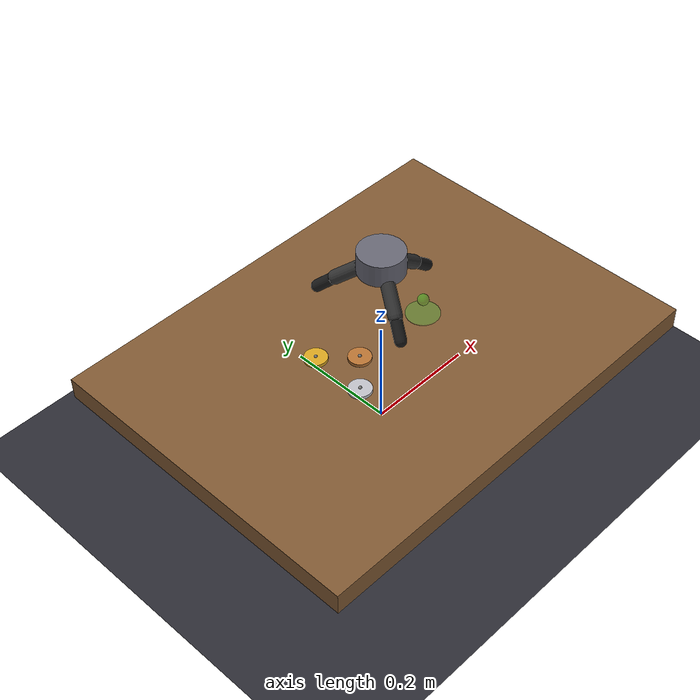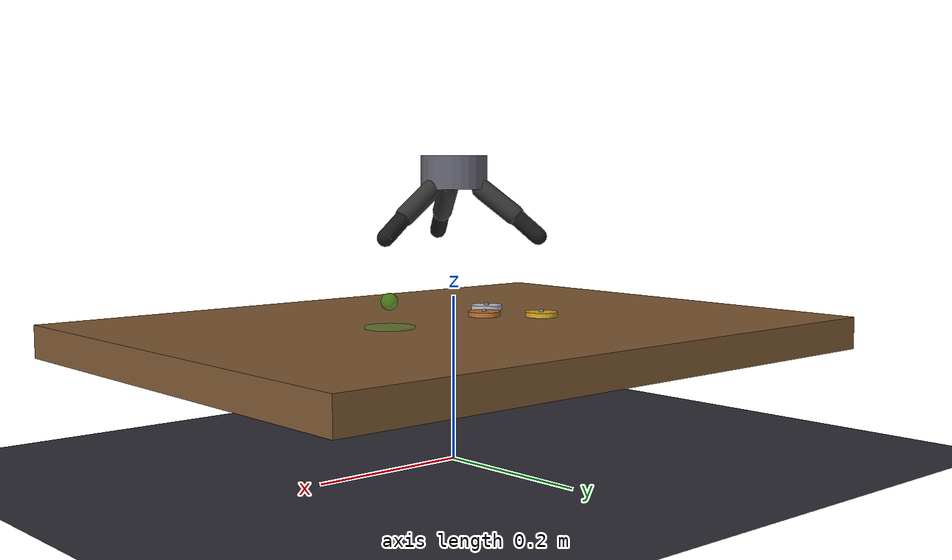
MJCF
<mujoco model="coin_stack">
  <compiler angle="radian" autolimits="true"/>

  <option gravity="0 0 -9.81" timestep="0.002">
    <flag warmstart="enable"/>
  </option>

  <default>
    <joint damping="0.5" armature="0.01"/>
    <geom friction="0.8 0.5 0.5" condim="4" contype="1" conaffinity="1"/>
    <position kp="20" kv="2"/>
  </default>

  <asset>
    <texture type="skybox" builtin="gradient" rgb1="0.4 0.5 0.6" rgb2="0.1 0.1 0.15" width="512" height="512"/>
    <texture name="wood" type="2d" builtin="flat" rgb1="0.5 0.35 0.2" rgb2="0.45 0.3 0.18" width="512" height="512"/>
    <texture name="grid" type="2d" builtin="checker" rgb1="0.15 0.15 0.18" rgb2="0.2 0.2 0.23" width="512" height="512"/>

    <material name="table" texture="wood" texrepeat="4 4"/>
    <material name="floor" texture="grid" texrepeat="10 10"/>
    <material name="gripper_metal" rgba="0.4 0.4 0.45 1"/>
    <material name="finger_rubber" rgba="0.2 0.2 0.2 1"/>
    <material name="finger_tip" rgba="0.1 0.1 0.1 1"/>
    <material name="coin_gold" rgba="0.85 0.65 0.13 1" specular="0.8" shininess="0.9"/>
    <material name="coin_silver" rgba="0.75 0.75 0.78 1" specular="0.8" shininess="0.9"/>
    <material name="coin_copper" rgba="0.72 0.45 0.2 1" specular="0.7" shininess="0.8"/>
    <material name="target_zone" rgba="0.2 0.8 0.2 0.3"/>
  </asset>

  <worldbody>
    <!-- Ground and table -->
    <geom name="floor" type="plane" size="1 1 0.1" material="floor" pos="0 0 0"/>
    <geom name="table" type="box" size="0.4 0.3 0.02" pos="0 0 0.15" material="table"/>

    <!-- Target stacking zone (visual only) -->
    <body name="target_zone" pos="0.1 0 0.171">
      <geom name="target_base" type="cylinder" size="0.03 0.001" material="target_zone" contype="0" conaffinity="0"/>
      <site name="stack_target" pos="0 0 0.03" size="0.01" rgba="0 1 0 0.3"/>
    </body>

    <!-- Coin 1 (Gold) -->
    <body name="coin_1" pos="-0.1 0.05 0.175">
      <freejoint name="coin_1_joint"/>
      <geom name="coin_1_geom" type="cylinder" size="0.02 0.003" material="coin_gold" mass="0.01"/>
      <site name="coin_1_site" pos="0 0 0.003" size="0.003"/>
    </body>

    <!-- Coin 2 (Silver) -->
    <body name="coin_2" pos="-0.1 -0.05 0.175">
      <freejoint name="coin_2_joint"/>
      <geom name="coin_2_geom" type="cylinder" size="0.02 0.003" material="coin_silver" mass="0.01"/>
      <site name="coin_2_site" pos="0 0 0.003" size="0.003"/>
    </body>

    <!-- Coin 3 (Copper) -->
    <body name="coin_3" pos="-0.05 0 0.175">
      <freejoint name="coin_3_joint"/>
      <geom name="coin_3_geom" type="cylinder" size="0.02 0.003" material="coin_copper" mass="0.01"/>
      <site name="coin_3_site" pos="0 0 0.003" size="0.003"/>
    </body>

    <!-- Robotiq-style 3-Finger Gripper -->
    <body name="gripper_base" pos="0 0 0.35">
      <joint name="base_x" type="slide" axis="1 0 0" range="-0.3 0.3" damping="5"/>
      <joint name="base_y" type="slide" axis="0 1 0" range="-0.3 0.3" damping="5"/>
      <joint name="base_z" type="slide" axis="0 0 1" range="0.15 0.5" damping="5"/>
      <joint name="base_roll" type="hinge" axis="1 0 0" range="-3.14 3.14" damping="1"/>
      <joint name="base_pitch" type="hinge" axis="0 1 0" range="-1.57 1.57" damping="1"/>
      <joint name="base_yaw" type="hinge" axis="0 0 1" range="-3.14 3.14" damping="1"/>

      <geom name="palm" type="cylinder" size="0.04 0.02" material="gripper_metal"/>

      <!-- Finger A -->
      <body name="finger_a_proximal" pos="0.035 0 -0.02">
        <joint name="finger_a_base" type="hinge" axis="0 1 0" range="-0.2 1.4"/>
        <geom name="finger_a_prox" type="capsule" fromto="0 0 0 0.04 0 -0.03" size="0.012" material="finger_rubber"/>
        <body name="finger_a_distal" pos="0.04 0 -0.03">
          <joint name="finger_a_tip" type="hinge" axis="0 1 0" range="-0.4 1.2"/>
          <geom name="finger_a_dist" type="capsule" fromto="0 0 0 0.03 0 -0.025" size="0.01" material="finger_tip"/>
          <site name="finger_a_site" pos="0.03 0 -0.025" size="0.005"/>
        </body>
      </body>

      <!-- Finger B -->
      <body name="finger_b_proximal" pos="-0.0175 0.0303 -0.02" euler="0 0 2.094">
        <joint name="finger_b_base" type="hinge" axis="0 1 0" range="-0.2 1.4"/>
        <geom name="finger_b_prox" type="capsule" fromto="0 0 0 0.04 0 -0.03" size="0.012" material="finger_rubber"/>
        <body name="finger_b_distal" pos="0.04 0 -0.03">
          <joint name="finger_b_tip" type="hinge" axis="0 1 0" range="-0.4 1.2"/>
          <geom name="finger_b_dist" type="capsule" fromto="0 0 0 0.03 0 -0.025" size="0.01" material="finger_tip"/>
          <site name="finger_b_site" pos="0.03 0 -0.025" size="0.005"/>
        </body>
      </body>

      <!-- Finger C -->
      <body name="finger_c_proximal" pos="-0.0175 -0.0303 -0.02" euler="0 0 -2.094">
        <joint name="finger_c_base" type="hinge" axis="0 1 0" range="-0.2 1.4"/>
        <geom name="finger_c_prox" type="capsule" fromto="0 0 0 0.04 0 -0.03" size="0.012" material="finger_rubber"/>
        <body name="finger_c_distal" pos="0.04 0 -0.03">
          <joint name="finger_c_tip" type="hinge" axis="0 1 0" range="-0.4 1.2"/>
          <geom name="finger_c_dist" type="capsule" fromto="0 0 0 0.03 0 -0.025" size="0.01" material="finger_tip"/>
          <site name="finger_c_site" pos="0.03 0 -0.025" size="0.005"/>
        </body>
      </body>
    </body>
  </worldbody>

  <actuator>
    <position name="act_base_x" joint="base_x" kp="100" ctrlrange="-0.3 0.3"/>
    <position name="act_base_y" joint="base_y" kp="100" ctrlrange="-0.3 0.3"/>
    <position name="act_base_z" joint="base_z" kp="100" ctrlrange="0.15 0.5"/>
    <position name="act_base_roll" joint="base_roll" kp="50" ctrlrange="-3.14 3.14"/>
    <position name="act_base_pitch" joint="base_pitch" kp="50" ctrlrange="-1.57 1.57"/>
    <position name="act_base_yaw" joint="base_yaw" kp="50" ctrlrange="-3.14 3.14"/>
    <position name="act_finger_a_base" joint="finger_a_base" kp="10" ctrlrange="-0.2 1.4"/>
    <position name="act_finger_a_tip" joint="finger_a_tip" kp="5" ctrlrange="-0.4 1.2"/>
    <position name="act_finger_b_base" joint="finger_b_base" kp="10" ctrlrange="-0.2 1.4"/>
    <position name="act_finger_b_tip" joint="finger_b_tip" kp="5" ctrlrange="-0.4 1.2"/>
    <position name="act_finger_c_base" joint="finger_c_base" kp="10" ctrlrange="-0.2 1.4"/>
    <position name="act_finger_c_tip" joint="finger_c_tip" kp="5" ctrlrange="-0.4 1.2"/>
  </actuator>

  <sensor>
    <touch name="finger_a_touch" site="finger_a_site"/>
    <touch name="finger_b_touch" site="finger_b_site"/>
    <touch name="finger_c_touch" site="finger_c_site"/>
  </sensor>
</mujoco>
